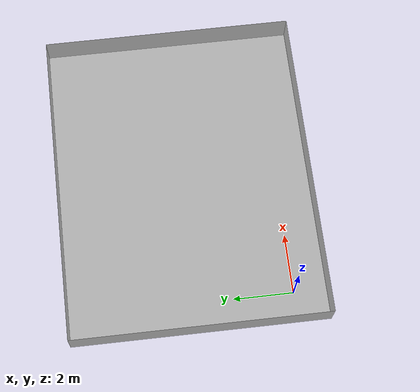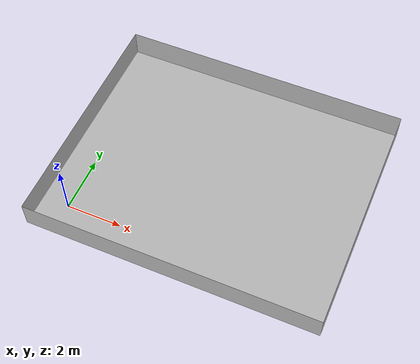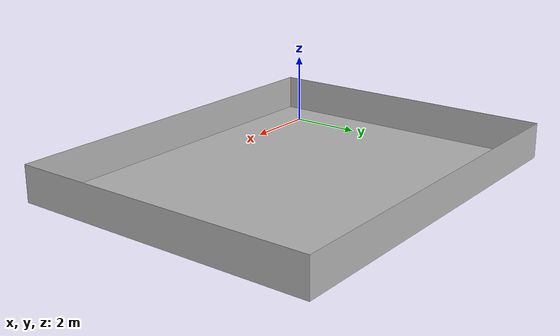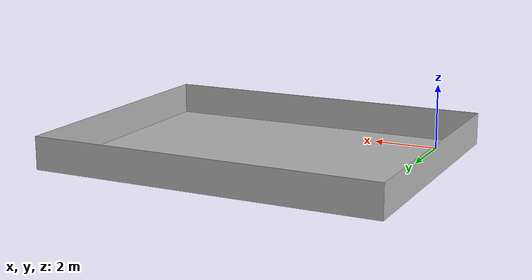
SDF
<?xml version="1.0"?>
<sdf version="1.4">
<world name="22_reInvent2019_track">
<scene>
<ambient>0.5 0.5 0.5 1.0</ambient>
<shadows>0</shadows>
<sky></sky>
</scene>
<include>
<uri>model://sun</uri>
<pose>0.0 0.0 15.0 0 0 0</pose>
<cast_shadows>false</cast_shadows>
<attenuation>
<constant>0.5</constant>
<linear>0.01</linear>
<quadratic>0.0</quadratic>
<range>100</range>
</attenuation>
</include>
<light type="directional" name="Light 1">
<pose>50 0 50 0 0.7 0</pose>
<diffuse>0.0875 0.0875 0.0875 0</diffuse>
<specular>.1 .1 .1 0</specular>
<attenuation>
<constant>1</constant>
<linear>0.01</linear>
<quadratic>0.00</quadratic>
<range>90</range>
</attenuation>
<direction>0 0 -1</direction>
<cast_shadows>false</cast_shadows>
</light>
<light type="directional" name="Light 2">
<pose>-50 0 50 0 -0.7 0</pose>
<diffuse>0.0875 0.0875 0.0875 0</diffuse>
<specular>.1 .1 .1 0</specular>
<attenuation>
<constant>1</constant>
<linear>0.01</linear>
<quadratic>0.00</quadratic>
<range>90</range>
</attenuation>
<direction>0 0 -1</direction>
<cast_shadows>false</cast_shadows>
</light>
<light type="directional" name="Light 3">
<pose>0 50 50 -0.7 0 0</pose>
<diffuse>0.0875 0.0875 0.0875 0</diffuse>
<specular>.1 .1 .1 0</specular>
<attenuation>
<constant>1</constant>
<linear>0.01</linear>
<quadratic>0.00</quadratic>
<range>90</range>
</attenuation>
<direction>0 0 -1</direction>
<cast_shadows>false</cast_shadows>
</light>
<light type="directional" name="Light 4">
<pose>0 -50 50 0.7 0 0</pose>
<diffuse>0.0875 0.0875 0.0875 1</diffuse>
<specular>.1 .1 .1 1</specular>
<attenuation>
<constant>1</constant>
<linear>0.01</linear>
<quadratic>0.00</quadratic>
<range>90</range>
</attenuation>
<direction>0 0 -1</direction>
<cast_shadows>false</cast_shadows>
</light>
<light type="directional" name="Light 5">
<pose>4.415930 -0.164192 5.0 0 0 0</pose>
<diffuse>64 64 64 0</diffuse>
<specular>0 0 0 0</specular>
<attenuation>
<constant>0.5</constant>
<linear>0.01</linear>
<quadratic>0.00</quadratic>
<range>90</range>
</attenuation>
<direction>0 0 -1</direction>
<cast_shadows>false</cast_shadows>
</light>
<include>
<uri>model://models/11_reInvent2019_track</uri>
<pose>0 0 0 0 0 0</pose>
<name>racetrack</name>
</include>
</world>
</sdf>

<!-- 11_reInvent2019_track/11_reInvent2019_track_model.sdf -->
<sdf version="1.4">
<model name="11_reInvent2019_track_model">
<link name="fullLink">
<collision name="collision">
<pose>0 0 0 0 0 0</pose>
<geometry>
<mesh>
<uri>model://meshes/11_reInvent2019_track/11_reInvent2019_track.dae</uri>
</mesh>
</geometry>
</collision>
<visual name="visual">
<pose>0 0 0 0 0 0</pose>
<geometry>
<mesh>
<uri>model://meshes/11_reInvent2019_track/11_reInvent2019_track.dae</uri>
</mesh>
</geometry>
</visual>
</link>
<static>1</static>
</model>
</sdf>
